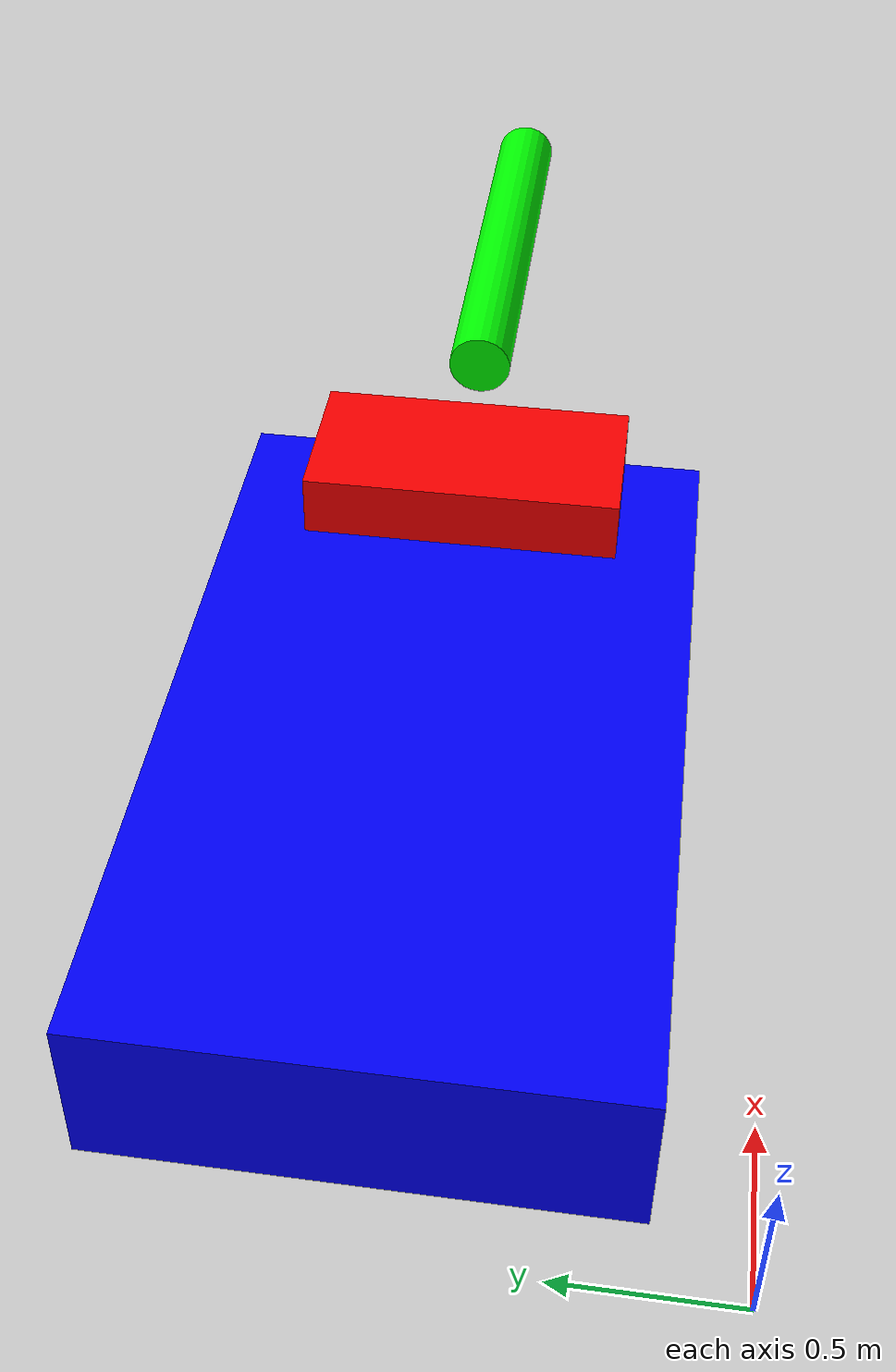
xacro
<?xml version="1.0"?>
<robot xmlns:xacro="http://www.ros.org/wiki/xacro" name="robot" >

    <xacro:include filename="robot_gazebo.xacro" />
    <xacro:include filename="robot_physics.xacro" />

    <link name="world"/>

    <joint name = "base_joint" type="fixed">
        <origin xyz="1.5 1 0" rpy="0 0 0"/>
        <parent link="world"/>
        <child link="base_link"/>
    </joint>

    <link name="base_link">
        <visual>
            <origin xyz="0 0 0.15" rpy="0 0 0"/>
            <geometry>
                <box size="2.5 1.5 0.5"/>
            </geometry>
            <material name="blue">
                <color rgba="0 0 1 1 "/>
            </material>
        </visual>
        <collision>
            <origin xyz="0 0 0.15" rpy="0 0 0"/>
            <geometry>
                <box size="2.5 1.5 0.5"/>
            </geometry>
        </collision>
        <inertial>
            <origin xyz="0 0 0.15" rpy="0 0 0"/>
            <mass value="5"/>
            <inertia ixx="2.6" ixy="0" ixz="0" iyy="6.78" iyz="0" izz="8.86"/>
        </inertial>
    </link>

    <joint name="box_joint" type="fixed">
        <origin xyz="1 0 0.5" rpy="0 0 0"/>
        <parent link="base_link"/>
        <child link="box_link"/>
    </joint>

    <link name="box_link">
        <visual>
            <origin xyz="0 0 0" rpy="0 0 0"/>
            <geometry>
                <box size="0.5 1 0.2"/>
            </geometry>
            <material name="red">
                <color rgba="1 0 0 1"/>
            </material>
        </visual>
        <collision>
            <origin xyz="0 0 0" rpy="0 0 0"/>
            <geometry>
                <box size="0.5 1 0.2"/>
            </geometry>
        </collision>
        <inertial>
            <origin xyz="0 0 0" rpy="0 0 0"/>
            <mass value="1"/>
            <inertia ixx="0.087" ixy="0" ixz="0" iyy="0.024" iyz="0" izz="0.104"/>
        </inertial>
    </link>

    <xacro:property name="arm_len" value="1.5" />
    <xacro:property name="arm_rad" value="0.1" />

    <joint name="arm_joint" type="revolute">
        <origin xyz="0.25 0 0.25" rpy="0 0 0"/>
        <parent link="box_link"/>
        <child link="arm_link"/>
        <axis xyz="0 -1 0"/>
        <limit lower="0" upper="${pi/2}" effort="100" velocity="100"/>
    </joint>

    <link name="arm_link">
        <visual>
            <origin xyz="${arm_len/2} 0 0" rpy="0 ${pi/2} 0"/>
            <geometry>
                <cylinder radius="${arm_rad}" length="${arm_len}"/>
            </geometry>
            <material name="green">
                <color rgba="0 1 0 1"/>
            </material>
        </visual>
        <collision>
            <origin xyz="${arm_len/2} 0 0" rpy="0 ${pi/2} 0"/>
            <geometry>
                <cylinder radius="${arm_rad}" length="${arm_len}"/>
            </geometry>
        </collision>
        <xacro:inertial_cylinder mass="1.0" length="${arm_len}" radius="${arm_rad}">
            <origin xyz="${arm_len/2} 0 0" rpy="0 ${pi/2} 0"/>
        </xacro:inertial_cylinder>
    </link>
</robot>

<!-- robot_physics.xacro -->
<robot xmlns:xacro="http://www.ros.org/wiki/xacro" name="robot" >

    <xacro:macro name="inertial_sphere" params="mass radius *origin">
        <inertial>
            <xacro:insert_block name="origin"/>
            <mass value="${mass}" />
            <inertia ixx="${(2/5) * mass * (radius*radius)}" ixy="0.0" ixz="0.0"
                    iyy="${(2/5) * mass * (radius*radius)}" iyz="0.0"
                    izz="${(2/5) * mass * (radius*radius)}" />
        </inertial>
    </xacro:macro>

    <xacro:macro name="inertial_box" params="mass x y z *origin">
        <inertial>
            <xacro:insert_block name="origin"/>
            <mass value="${mass}" />
            <inertia ixx="${(1/12) * mass * (y*y+z*z)}" ixy="0.0" ixz="0.0"
                    iyy="${(1/12) * mass * (x*x+z*z)}" iyz="0.0"
                    izz="${(1/12) * mass * (x*x+y*y)}" />
        </inertial>
    </xacro:macro>

    <xacro:macro name="inertial_cylinder" params="mass length radius *origin">
        <inertial>
            <xacro:insert_block name="origin"/>
            <mass value="${mass}" />
            <inertia ixx="${(1/12) * mass * (3*radius*radius + length*length)}" ixy="0.0" ixz="0.0"
                    iyy="${(1/12) * mass * (3*radius*radius + length*length)}" iyz="0.0"
                    izz="${(1/2) * mass * (radius*radius)}" />
        </inertial>
    </xacro:macro>
 </robot>
